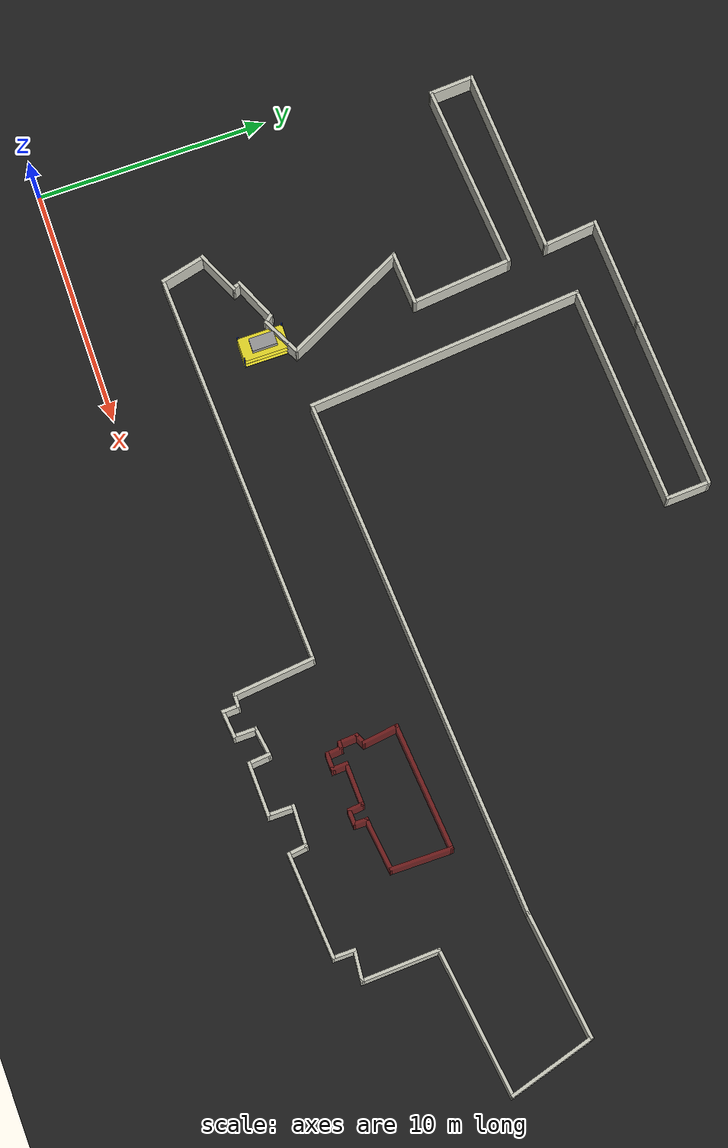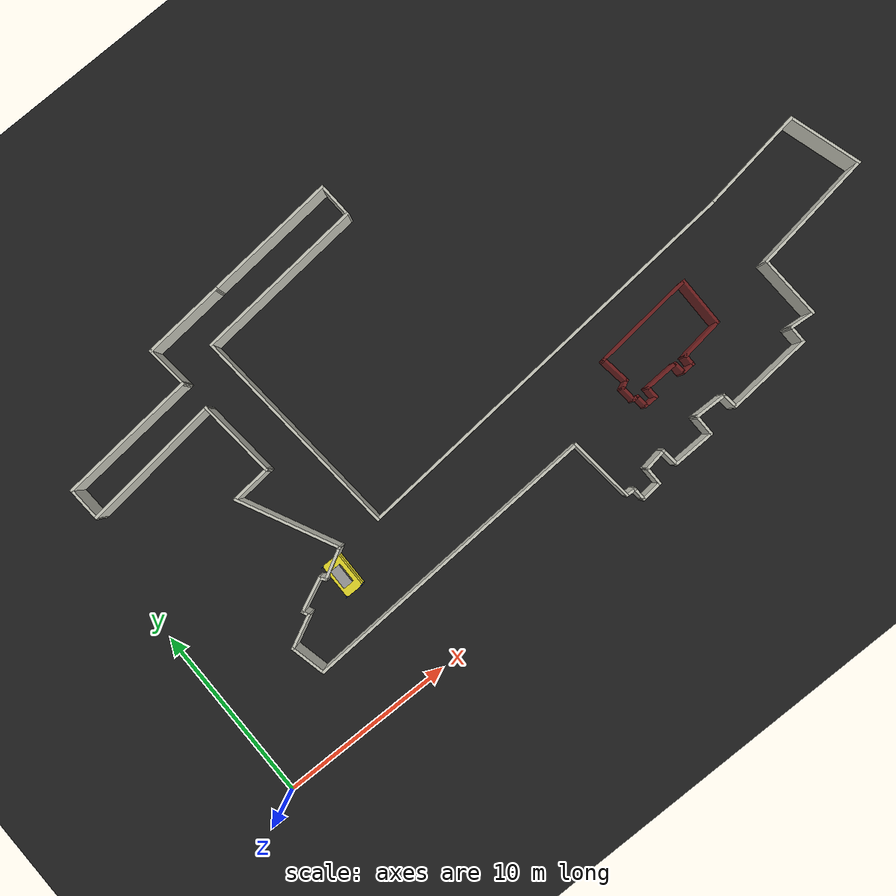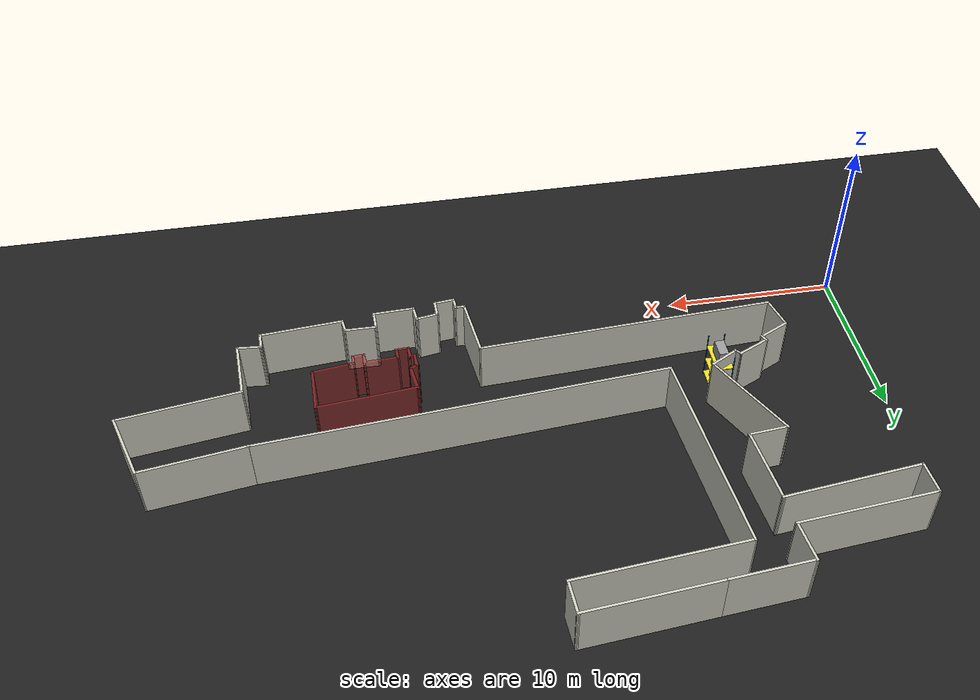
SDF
<sdf version="1.7">
    <world name="default">
        <light name="sun" type="directional">
            <cast_shadows>1</cast_shadows>
            <pose>0 0 10 0 -0 0</pose>
            <diffuse>0.8 0.8 0.8 1</diffuse>
            <specular>0.2 0.2 0.2 1</specular>
            <attenuation>
                <range>1000</range>
                <constant>0.9</constant>
                <linear>0.01</linear>
                <quadratic>0.001</quadratic>
            </attenuation>
            <direction>-0.5 0.1 -0.9</direction>
            <spot>
                <inner_angle>0</inner_angle>
                <outer_angle>0</outer_angle>
                <falloff>0</falloff>
            </spot>
        </light>
        <gravity>0 0 -9.8</gravity>
        <magnetic_field>6e-06 2.3e-05 -4.2e-05</magnetic_field>
        <atmosphere type="adiabatic" />
        <physics type="ode">
            <max_step_size>0.005</max_step_size>
            <real_time_factor>1</real_time_factor>
            <real_time_update_rate>1000</real_time_update_rate>
        </physics>
        <scene>
            <ambient>0.4 0.4 0.4 1</ambient>
            <background>0.7 0.7 0.7 1</background>
            <shadows>1</shadows>
        </scene>
        <wind />
        <spherical_coordinates>
            <surface_model>EARTH_WGS84</surface_model>
            <latitude_deg>0</latitude_deg>
            <longitude_deg>0</longitude_deg>
            <elevation>0</elevation>
            <heading_deg>0</heading_deg>
        </spherical_coordinates>
        <model name="walls-generator">
            <pose>0 0 0 0 -0 0</pose>
            <link name="Wall_11">
                <collision name="Wall_11_Collision">
                    <geometry>
                        <box>
                            <size>2.080802941783547 0.15 3.5</size>
                            <scale>1 1 1</scale>
                        </box>
                    </geometry>
                    <pose>0 0 1.25 0 -0 0</pose>
                </collision>
                <visual name="Wall_11_Visual">
                    <pose>0 0 1.25 0 -0 0</pose>
                    <geometry>
                        <box>
                            <size>2.080802941783547 0.15 3.5</size>
                        </box>
                        <scale>1 1 1</scale>
                    </geometry>
                    <material>
                        <script>
                            <uri>file://media/materials/scripts/gazebo.material</uri>
                            <name>Gazebo/PaintedWall</name>
                        </script>
                        <ambient>1 1 1 1</ambient>
                    </material>
                    <meta>
                        <layer>0</layer>
                    </meta>
                </visual>
                <pose>5.21 4.76 0 0 0 1.8007007549268013</pose>
            </link>
            <link name="Wall_12">
                <collision name="Wall_12_Collision">
                    <geometry>
                        <box>
                            <size>2.001485889765299 0.15 3.5</size>
                            <scale>1 1 1</scale>
                        </box>
                    </geometry>
                    <pose>0 0 1.25 0 -0 0</pose>
                </collision>
                <visual name="Wall_12_Visual">
                    <pose>0 0 1.25 0 -0 0</pose>
                    <geometry>
                        <box>
                            <size>2.001485889765299 0.15 3.5</size>
                        </box>
                        <scale>1 1 1</scale>
                    </geometry>
                    <material>
                        <script>
                            <uri>file://media/materials/scripts/gazebo.material</uri>
                            <name>Gazebo/PaintedWall</name>
                        </script>
                        <ambient>1 1 1 1</ambient>
                    </material>
                    <meta>
                        <layer>0</layer>
                    </meta>
                </visual>
                <pose>5.82 6.11 0 0 0 0.45881672870682993</pose>
            </link>
            <link name="Wall_13">
                <collision name="Wall_13_Collision">
                    <geometry>
                        <box>
                            <size>0.4861547262794318 0.15 3.5</size>
                            <scale>1 1 1</scale>
                        </box>
                    </geometry>
                    <pose>0 0 1.25 0 -0 0</pose>
                </collision>
                <visual name="Wall_13_Visual">
                    <pose>0 0 1.25 0 -0 0</pose>
                    <geometry>
                        <box>
                            <size>0.4861547262794318 0.15 3.5</size>
                        </box>
                        <scale>1 1 1</scale>
                    </geometry>
                    <material>
                        <script>
                            <uri>file://media/materials/scripts/gazebo.material</uri>
                            <name>Gazebo/PaintedWall</name>
                        </script>
                        <ambient>1 1 1 1</ambient>
                    </material>
                    <meta>
                        <layer>0</layer>
                    </meta>
                </visual>
                <pose>6.585000000000001 6.675000000000001 0 0 0 1.9678757720198792</pose>
            </link>
            <link name="Wall_14">
                <collision name="Wall_14_Collision">
                    <geometry>
                        <box>
                            <size>2.037882411592417 0.15 3.5</size>
                            <scale>1 1 1</scale>
                        </box>
                    </geometry>
                    <pose>0 0 1.25 0 -0 0</pose>
                </collision>
                <visual name="Wall_14_Visual">
                    <pose>0 0 1.25 0 -0 0</pose>
                    <geometry>
                        <box>
                            <size>2.037882411592417 0.15 3.5</size>
                        </box>
                        <scale>1 1 1</scale>
                    </geometry>
                    <material>
                        <script>
                            <uri>file://media/materials/scripts/gazebo.material</uri>
                            <name>Gazebo/PaintedWall</name>
                        </script>
                        <ambient>1 1 1 1</ambient>
                    </material>
                    <meta>
                        <layer>0</layer>
                    </meta>
                </visual>
                <pose>7.375 7.23 0 0 0 0.4375871595186294</pose>
            </link>
            <link name="Wall_15">
                <collision name="Wall_15_Collision">
                    <geometry>
                        <box>
                            <size>0.4982814953453589 0.15 3.5</size>
                            <scale>1 1 1</scale>
                        </box>
                    </geometry>
                    <pose>0 0 1.25 0 -0 0</pose>
                </collision>
                <visual name="Wall_15_Visual">
                    <pose>0 0 1.25 0 -0 0</pose>
                    <geometry>
                        <box>
                            <size>0.4982814953453589 0.15 3.5</size>
                        </box>
                        <scale>1 1 1</scale>
                    </geometry>
                    <material>
                        <script>
                            <uri>file://media/materials/scripts/gazebo.material</uri>
                            <name>Gazebo/PaintedWall</name>
                        </script>
                        <ambient>1 1 1 1</ambient>
                    </material>
                    <meta>
                        <layer>0</layer>
                    </meta>
                </visual>
                <pose>8.34 7.495 0 0 0 -0.8870870151605271</pose>
            </link>
            <link name="Wall_16">
                <collision name="Wall_16_Collision">
                    <geometry>
                        <box>
                            <size>1.890632069105933 0.15 3.5</size>
                            <scale>1 1 1</scale>
                        </box>
                    </geometry>
                    <pose>0 0 1.25 0 -0 0</pose>
                </collision>
                <visual name="Wall_16_Visual">
                    <pose>0 0 1.25 0 -0 0</pose>
                    <geometry>
                        <box>
                            <size>1.890632069105933 0.15 3.5</size>
                        </box>
                        <scale>1 1 1</scale>
                    </geometry>
                    <material>
                        <script>
                            <uri>file://media/materials/scripts/gazebo.material</uri>
                            <name>Gazebo/PaintedWall</name>
                        </script>
                        <ambient>1 1 1 1</ambient>
                    </material>
                    <meta>
                        <layer>0</layer>
                    </meta>
                </visual>
                <pose>9.215 7.775 0 0 0 0.497054199332323</pose>
            </link>
            <link name="Wall_17">
                <collision name="Wall_17_Collision">
                    <geometry>
                        <box>
                            <size>5.901182487106457 0.15 3.5</size>
                            <scale>1 1 1</scale>
                        </box>
                    </geometry>
                    <pose>0 0 1.25 0 -0 0</pose>
                </collision>
                <visual name="Wall_17_Visual">
                    <pose>0 0 1.25 0 -0 0</pose>
                    <geometry>
                        <box>
                            <size>5.901182487106457 0.15 3.5</size>
                        </box>
                        <scale>1 1 1</scale>
                    </geometry>
                    <material>
                        <script>
                            <uri>file://media/materials/scripts/gazebo.material</uri>
                            <name>Gazebo/PaintedWall</name>
                        </script>
                        <ambient>1 1 1 1</ambient>
                    </material>
                    <meta>
                        <layer>0</layer>
                    </meta>
                </visual>
                <pose>8.7 10.765 0 0 0 2.03211112509742</pose>
            </link>
            <link name="Wall_18">
                <collision name="Wall_18_Collision">
                    <geometry>
                        <box>
                            <size>2.3183403791840433 0.15 3.5</size>
                            <scale>1 1 1</scale>
                        </box>
                    </geometry>
                    <pose>0 0 1.25 0 -0 0</pose>
                </collision>
                <visual name="Wall_18_Visual">
                    <pose>0 0 1.25 0 -0 0</pose>
                    <geometry>
                        <box>
                            <size>2.3183403791840433 0.15 3.5</size>
                        </box>
                        <scale>1 1 1</scale>
                    </geometry>
                    <material>
                        <script>
                            <uri>file://media/materials/scripts/gazebo.material</uri>
                            <name>Gazebo/PaintedWall</name>
                        </script>
                        <ambient>1 1 1 1</ambient>
                    </material>
                    <meta>
                        <layer>0</layer>
                    </meta>
                </visual>
                <pose>8.5 13.435 0 0 0 0.08773713978212376</pose>
            </link>
            <link name="Wall_19">
                <collision name="Wall_19_Collision">
                    <geometry>
                        <box>
                            <size>4.479457240809752 0.15 3.5</size>
                            <scale>1 1 1</scale>
                        </box>
                    </geometry>
                    <pose>0 0 1.25 0 -0 0</pose>
                </collision>
                <visual name="Wall_19_Visual">
                    <pose>0 0 1.25 0 -0 0</pose>
                    <geometry>
                        <box>
                            <size>4.479457240809752 0.15 3.5</size>
                        </box>
                        <scale>1 1 1</scale>
                    </geometry>
                    <material>
                        <script>
                            <uri>file://media/materials/scripts/gazebo.material</uri>
                            <name>Gazebo/PaintedWall</name>
                        </script>
                        <ambient>1 1 1 1</ambient>
                    </material>
                    <meta>
                        <layer>0</layer>
                    </meta>
                </visual>
                <pose>9.375 15.685 0 0 0 1.665638540090899</pose>
            </link>
            <link name="Wall_20">
                <collision name="Wall_20_Collision">
                    <geometry>
                        <box>
                            <size>7.926593084378275 0.15 3.5</size>
                            <scale>1 1 1</scale>
                        </box>
                    </geometry>
                    <pose>0 0 1.25 0 -0 0</pose>
                </collision>
                <visual name="Wall_20_Visual">
                    <pose>0 0 1.25 0 -0 0</pose>
                    <geometry>
                        <box>
                            <size>7.926593084378275 0.15 3.5</size>
                        </box>
                        <scale>1 1 1</scale>
                    </geometry>
                    <material>
                        <script>
                            <uri>file://media/materials/scripts/gazebo.material</uri>
                            <name>Gazebo/PaintedWall</name>
                        </script>
                        <ambient>1 1 1 1</ambient>
                    </material>
                    <meta>
                        <layer>0</layer>
                    </meta>
                </visual>
                <pose>5.305 17.415 0 0 0 -3.03207147282465</pose>
            </link>
            <link name="Wall_21">
                <collision name="Wall_21_Collision">
                    <geometry>
                        <box>
                            <size>1.9827302038216081 0.15 3.5</size>
                            <scale>1 1 1</scale>
                        </box>
                    </geometry>
                    <pose>0 0 1.25 0 -0 0</pose>
                </collision>
                <visual name="Wall_21_Visual">
                    <pose>0 0 1.25 0 -0 0</pose>
                    <geometry>
                        <box>
                            <size>1.9827302038216081 0.15 3.5</size>
                        </box>
                        <scale>1 1 1</scale>
                    </geometry>
                    <material>
                        <script>
                            <uri>file://media/materials/scripts/gazebo.material</uri>
                            <name>Gazebo/PaintedWall</name>
                        </script>
                        <ambient>1 1 1 1</ambient>
                    </material>
                    <meta>
                        <layer>0</layer>
                    </meta>
                </visual>
                <pose>1.3900000000000001 17.905 0 0 0 1.6253868419753732</pose>
            </link>
            <link name="Wall_22">
                <collision name="Wall_22_Collision">
                    <geometry>
                        <box>
                            <size>7.880853769151246 0.15 3.5</size>
                            <scale>1 1 1</scale>
                        </box>
                    </geometry>
                    <pose>0 0 1.25 0 -0 0</pose>
                </collision>
                <visual name="Wall_22_Visual">
                    <pose>0 0 1.25 0 -0 0</pose>
                    <geometry>
                        <box>
                            <size>7.880853769151246 0.15 3.5</size>
                        </box>
                        <scale>1 1 1</scale>
                    </geometry>
                    <material>
                        <script>
                            <uri>file://media/materials/scripts/gazebo.material</uri>
                            <name>Gazebo/PaintedWall</name>
                        </script>
                        <ambient>1 1 1 1</ambient>
                    </material>
                    <meta>
                        <layer>0</layer>
                    </meta>
                </visual>
                <pose>5.19 19.165 0 0 0 0.0893716808633222</pose>
            </link>
            <link name="Wall_23">
                <collision name="Wall_23_Collision">
                    <geometry>
                        <box>
                            <size>2.4326519664635686 0.15 3.5</size>
                            <scale>1 1 1</scale>
                        </box>
                    </geometry>
                    <pose>0 0 1.25 0 -0 0</pose>
                </collision>
                <visual name="Wall_23_Visual">
                    <pose>0 0 1.25 0 -0 0</pose>
                    <geometry>
                        <box>
                            <size>2.4326519664635686 0.15 3.5</size>
                        </box>
                        <scale>1 1 1</scale>
                    </geometry>
                    <material>
                        <script>
                            <uri>file://media/materials/scripts/gazebo.material</uri>
                            <name>Gazebo/PaintedWall</name>
                        </script>
                        <ambient>1 1 1 1</ambient>
                    </material>
                    <meta>
                        <layer>0</layer>
                    </meta>
                </visual>
                <pose>8.920000000000002 20.645000000000003 0 0 0 1.676131875903435</pose>
            </link>
            <link name="Wall_24">
                <collision name="Wall_24_Collision">
                    <geometry>
                        <box>
                            <size>4.675980556741268 0.15 3.5</size>
                            <scale>1 1 1</scale>
                        </box>
                    </geometry>
                    <pose>0 0 1.25 0 -0 0</pose>
                </collision>
                <visual name="Wall_24_Visual">
                    <pose>0 0 1.25 0 -0 0</pose>
                    <geometry>
                        <box>
                            <size>4.675980556741268 0.15 3.5</size>
                        </box>
                        <scale>1 1 1</scale>
                    </geometry>
                    <material>
                        <script>
                            <uri>file://media/materials/scripts/gazebo.material</uri>
                            <name>Gazebo/PaintedWall</name>
                        </script>
                        <ambient>1 1 1 1</ambient>
                    </material>
                    <meta>
                        <layer>0</layer>
                    </meta>
                </visual>
                <pose>11.055 21.97 0 0 0 0.08405866282370719</pose>
            </link>
            <link name="Wall_25">
                <collision name="Wall_25_Collision">
                    <geometry>
                        <box>
                            <size>7.546877719686868 0.15 3.5</size>
                            <scale>1 1 1</scale>
                        </box>
                    </geometry>
                    <pose>0 0 1.25 0 -0 0</pose>
                </collision>
                <visual name="Wall_25_Visual">
                    <pose>0 0 1.25 0 -0 0</pose>
                    <geometry>
                        <box>
                            <size>7.546877719686868 0.15 3.5</size>
                        </box>
                        <scale>1 1 1</scale>
                    </geometry>
                    <material>
                        <script>
                            <uri>file://media/materials/scripts/gazebo.material</uri>
                            <name>Gazebo/PaintedWall</name>
                        </script>
                        <ambient>1 1 1 1</ambient>
                    </material>
                    <meta>
                        <layer>0</layer>
                    </meta>
                </visual>
                <pose>16.995 22.475 0 0 0 0.08527438235225933</pose>
            </link>
            <link name="Wall_26">
                <collision name="Wall_26_Collision">
                    <geometry>
                        <box>
                            <size>1.9927153876819934 0.15 3.5</size>
                            <scale>1 1 1</scale>
                        </box>
                    </geometry>
                    <pose>0 0 1.25 0 -0 0</pose>
                </collision>
                <visual name="Wall_26_Visual">
                    <pose>0 0 1.25 0 -0 0</pose>
                    <geometry>
                        <box>
                            <size>1.9927153876819934 0.15 3.5</size>
                        </box>
                        <scale>1 1 1</scale>
                    </geometry>
                    <material>
                        <script>
                            <uri>file://media/materials/scripts/gazebo.material</uri>
                            <name>Gazebo/PaintedWall</name>
                        </script>
                        <ambient>1 1 1 1</ambient>
                    </material>
                    <meta>
                        <layer>0</layer>
                    </meta>
                </visual>
                <pose>20.73 21.869999999999997 0 0 0 -1.51650191488659</pose>
            </link>
            <link name="Wall_27">
                <collision name="Wall_27_Collision">
                    <geometry>
                        <box>
                            <size>9.616456570438594 0.15 3.5</size>
                            <scale>1 1 1</scale>
                        </box>
                    </geometry>
                    <pose>0 0 1.25 0 -0 0</pose>
                </collision>
                <visual name="Wall_27_Visual">
                    <pose>0 0 1.25 0 -0 0</pose>
                    <geometry>
                        <box>
                            <size>9.616456570438594 0.15 3.5</size>
                        </box>
                        <scale>1 1 1</scale>
                    </geometry>
                    <material>
                        <script>
                            <uri>file://media/materials/scripts/gazebo.material</uri>
                            <name>Gazebo/PaintedWall</name>
                        </script>
                        <ambient>1 1 1 1</ambient>
                    </material>
                    <meta>
                        <layer>0</layer>
                    </meta>
                </visual>
                <pose>16.065 20.535 0 0 0 -3.053801924545061</pose>
            </link>
            <link name="Wall_28">
                <collision name="Wall_28_Collision">
                    <geometry>
                        <box>
                            <size>12.243093070013147 0.15 3.5</size>
                            <scale>1 1 1</scale>
                        </box>
                    </geometry>
                    <pose>0 0 1.25 0 -0 0</pose>
                </collision>
                <visual name="Wall_28_Visual">
                    <pose>0 0 1.25 0 -0 0</pose>
                    <geometry>
                        <box>
                            <size>12.243093070013147 0.15 3.5</size>
                        </box>
                        <scale>1 1 1</scale>
                    </geometry>
                    <material>
                        <script>
                            <uri>file://media/materials/scripts/gazebo.material</uri>
                            <name>Gazebo/PaintedWall</name>
                        </script>
                        <ambient>1 1 1 1</ambient>
                    </material>
                    <meta>
                        <layer>0</layer>
                    </meta>
                </visual>
                <pose>11.86 14.095 0 0 0 -1.486350329818002</pose>
            </link>
            <link name="Wall_29">
                <collision name="Wall_29_Collision">
                    <geometry>
                        <box>
                            <size>23.231865175934118 0.15 3.5</size>
                            <scale>1 1 1</scale>
                        </box>
                    </geometry>
                    <pose>0 0 1.25 0 -0 0</pose>
                </collision>
                <visual name="Wall_29_Visual">
                    <pose>0 0 1.25 0 -0 0</pose>
                    <geometry>
                        <box>
                            <size>23.231865175934118 0.15 3.5</size>
                        </box>
                        <scale>1 1 1</scale>
                    </geometry>
                    <material>
                        <script>
                            <uri>file://media/materials/scripts/gazebo.material</uri>
                            <name>Gazebo/PaintedWall</name>
                        </script>
                        <ambient>1 1 1 1</ambient>
                    </material>
                    <meta>
                        <layer>0</layer>
                    </meta>
                </visual>
                <pose>23.875 8.98 0 0 0 0.07893171512518443</pose>
            </link>
            <link name="Wall_30">
                <collision name="Wall_30_Collision">
                    <geometry>
                        <box>
                            <size>5.961032610474665 0.15 3.5</size>
                            <scale>1 1 1</scale>
                        </box>
                    </geometry>
                    <pose>0 0 1.25 0 -0 0</pose>
                </collision>
                <visual name="Wall_30_Visual">
                    <pose>0 0 1.25 0 -0 0</pose>
                    <geometry>
                        <box>
                            <size>5.961032610474665 0.15 3.5</size>
                        </box>
                        <scale>1 1 1</scale>
                    </geometry>
                    <material>
                        <script>
                            <uri>file://media/materials/scripts/gazebo.material</uri>
                            <name>Gazebo/PaintedWall</name>
                        </script>
                        <ambient>1 1 1 1</ambient>
                    </material>
                    <meta>
                        <layer>0</layer>
                    </meta>
                </visual>
                <pose>38.255 10.31 0 0 0 0.14506083085764576</pose>
            </link>
            <link name="Wall_31">
                <collision name="Wall_31_Collision">
                    <geometry>
                        <box>
                            <size>4.207351352791622 0.15 3.5</size>
                            <scale>1 1 1</scale>
                        </box>
                    </geometry>
                    <pose>0 0 1.25 0 -0 0</pose>
                </collision>
                <visual name="Wall_31_Visual">
                    <pose>0 0 1.25 0 -0 0</pose>
                    <geometry>
                        <box>
                            <size>4.207351352791622 0.15 3.5</size>
                        </box>
                        <scale>1 1 1</scale>
                    </geometry>
                    <material>
                        <script>
                            <uri>file://media/materials/scripts/gazebo.material</uri>
                            <name>Gazebo/PaintedWall</name>
                        </script>
                        <ambient>1 1 1 1</ambient>
                    </material>
                    <meta>
                        <layer>0</layer>
                    </meta>
                </visual>
                <pose>41.755 8.8 0 0 0 -1.2576192178262633</pose>
            </link>
            <link name="Wall_32">
                <collision name="Wall_32_Collision">
                    <geometry>
                        <box>
                            <size>6.941082387955546 0.15 3.5</size>
                            <scale>1 1 1</scale>
                        </box>
                    </geometry>
                    <pose>0 0 1.25 0 -0 0</pose>
                </collision>
                <visual name="Wall_32_Visual">
                    <pose>0 0 1.25 0 -0 0</pose>
                    <geometry>
                        <box>
                            <size>6.941082387955546 0.15 3.5</size>
                        </box>
                        <scale>1 1 1</scale>
                    </geometry>
                    <material>
                        <script>
                            <uri>file://media/materials/scripts/gazebo.material</uri>
                            <name>Gazebo/PaintedWall</name>
                        </script>
                        <ambient>1 1 1 1</ambient>
                    </material>
                    <meta>
                        <layer>0</layer>
                    </meta>
                </visual>
                <pose>39.02 6.38 0 0 0 -2.996780155350854</pose>
            </link>
            <link name="Wall_33">
                <collision name="Wall_33_Collision">
                    <geometry>
                        <box>
                            <size>3.605792239125494 0.15 3.5</size>
                            <scale>1 1 1</scale>
                        </box>
                    </geometry>
                    <pose>0 0 1.25 0 -0 0</pose>
                </collision>
                <visual name="Wall_33_Visual">
                    <pose>0 0 1.25 0 -0 0</pose>
                    <geometry>
                        <box>
                            <size>3.605792239125494 0.15 3.5</size>
                        </box>
                        <scale>1 1 1</scale>
                    </geometry>
                    <material>
                        <script>
                            <uri>file://media/materials/scripts/gazebo.material</uri>
                            <name>Gazebo/PaintedWall</name>
                        </script>
                        <ambient>1 1 1 1</ambient>
                    </material>
                    <meta>
                        <layer>0</layer>
                    </meta>
                </visual>
                <pose>35.760000000000005 4.165 0 0 0 -1.5128901215467905</pose>
            </link>
            <link name="Wall_34">
                <collision name="Wall_34_Collision">
                    <geometry>
                        <box>
                            <size>1.4646102083887782 0.15 3.5</size>
                            <scale>1 1 1</scale>
                        </box>
                    </geometry>
                    <pose>0 0 1.25 0 -0 0</pose>
                </collision>
                <visual name="Wall_34_Visual">
                    <pose>0 0 1.25 0 -0 0</pose>
                    <geometry>
                        <box>
                            <size>1.4646102083887782 0.15 3.5</size>
                        </box>
                        <scale>1 1 1</scale>
                    </geometry>
                    <material>
                        <script>
                            <uri>file://media/materials/scripts/gazebo.material</uri>
                            <name>Gazebo/PaintedWall</name>
                        </script>
                        <ambient>1 1 1 1</ambient>
                    </material>
                    <meta>
                        <layer>0</layer>
                    </meta>
                </visual>
                <pose>35.205 2.495 0 0 0 3.0578197098460262</pose>
            </link>
            <link name="Wall_35">
                <collision name="Wall_35_Collision">
                    <geometry>
                        <box>
                            <size>1.0902127418834526 0.15 3.5</size>
                            <scale>1 1 1</scale>
                        </box>
                    </geometry>
                    <pose>0 0 1.25 0 -0 0</pose>
                </collision>
                <visual name="Wall_35_Visual">
                    <pose>0 0 1.25 0 -0 0</pose>
                    <geometry>
                        <box>
                            <size>1.0902127418834526 0.15 3.5</size>
                        </box>
                        <scale>1 1 1</scale>
                    </geometry>
                    <material>
                        <script>
                            <uri>file://media/materials/scripts/gazebo.material</uri>
                            <name>Gazebo/PaintedWall</name>
                        </script>
                        <ambient>1 1 1 1</ambient>
                    </material>
                    <meta>
                        <layer>0</layer>
                    </meta>
                </visual>
                <pose>34.56 2.08 0 0 0 -1.5495229407708397</pose>
            </link>
            <link name="Wall_36">
                <collision name="Wall_36_Collision">
                    <geometry>
                        <box>
                            <size>4.8362565017292845 0.15 3.5</size>
                            <scale>1 1 1</scale>
                        </box>
                    </geometry>
                    <pose>0 0 1.25 0 -0 0</pose>
                </collision>
                <visual name="Wall_36_Visual">
                    <pose>0 0 1.25 0 -0 0</pose>
                    <geometry>
                        <box>
                            <size>4.8362565017292845 0.15 3.5</size>
                        </box>
                        <scale>1 1 1</scale>
                    </geometry>
                    <material>
                        <script>
                            <uri>file://media/materials/scripts/gazebo.material</uri>
                            <name>Gazebo/PaintedWall</name>
                        </script>
                        <ambient>1 1 1 1</ambient>
                    </material>
                    <meta>
                        <layer>0</layer>
                    </meta>
                </visual>
                <pose>32.235 1.415 0 0 0 -3.0582742109996803</pose>
            </link>
            <link name="Wall_37">
                <collision name="Wall_37_Collision">
                    <geometry>
                        <box>
                            <size>0.9476214641043714 0.15 3.5</size>
                            <scale>1 1 1</scale>
                        </box>
                    </geometry>
                    <pose>0 0 1.25 0 -0 0</pose>
                </collision>
                <visual name="Wall_37_Visual">
                    <pose>0 0 1.25 0 -0 0</pose>
                    <geometry>
                        <box>
                            <size>0.9476214641043714 0.15 3.5</size>
                        </box>
                        <scale>1 1 1</scale>
                    </geometry>
                    <material>
                        <script>
                            <uri>file://media/materials/scripts/gazebo.material</uri>
                            <name>Gazebo/PaintedWall</name>
                        </script>
                        <ambient>1 1 1 1</ambient>
                    </material>
                    <meta>
                        <layer>0</layer>
                    </meta>
                </visual>
                <pose>29.845 1.6150000000000002 0 0 0 1.7091472969720256</pose>
            </link>
            <link name="Wall_38">
                <collision name="Wall_38_Collision">
                    <geometry>
                        <box>
                            <size>1.8801156030739647 0.15 3.5</size>
                            <scale>1 1 1</scale>
                        </box>
                    </geometry>
                    <pose>0 0 1.25 0 -0 0</pose>
                </collision>
                <visual name="Wall_38_Visual">
                    <pose>0 0 1.25 0 -0 0</pose>
                    <geometry>
                        <box>
                            <size>1.8801156030739647 0.15 3.5</size>
                        </box>
                        <scale>1 1 1</scale>
                    </geometry>
                    <material>
                        <script>
                            <uri>file://media/materials/scripts/gazebo.material</uri>
                            <name>Gazebo/PaintedWall</name>
                        </script>
                        <ambient>1 1 1 1</ambient>
                    </material>
                    <meta>
                        <layer>0</layer>
                    </meta>
                </visual>
                <pose>28.925 2.0200000000000005 0 0 0 3.1300324749343833</pose>
            </link>
            <link name="Wall_39">
                <collision name="Wall_39_Collision">
                    <geometry>
                        <box>
                            <size>1.2601801655587261 0.15 3.5</size>
                            <scale>1 1 1</scale>
                        </box>
                    </geometry>
                    <pose>0 0 1.25 0 -0 0</pose>
                </collision>
                <visual name="Wall_39_Visual">
                    <pose>0 0 1.25 0 -0 0</pose>
                    <geometry>
                        <box>
                            <size>1.2601801655587261 0.15 3.5</size>
                        </box>
                        <scale>1 1 1</scale>
                    </geometry>
                    <material>
                        <script>
                            <uri>file://media/materials/scripts/gazebo.material</uri>
                            <name>Gazebo/PaintedWall</name>
                        </script>
                        <ambient>1 1 1 1</ambient>
                    </material>
                    <meta>
                        <layer>0</layer>
                    </meta>
                </visual>
                <pose>28.07 1.475 0 0 0 -1.5527802582408416</pose>
            </link>
            <link name="Wall_40">
                <collision name="Wall_40_Collision">
                    <geometry>
                        <box>
                            <size>2.4513908837918 0.15 3.5</size>
                            <scale>1 1 1</scale>
                        </box>
                    </geometry>
                    <pose>0 0 1.25 0 -0 0</pose>
                </collision>
                <visual name="Wall_40_Visual">
                    <pose>0 0 1.25 0 -0 0</pose>
                    <geometry>
                        <box>
                            <size>2.4513908837918 0.15 3.5</size>
                        </box>
                        <scale>1 1 1</scale>
                    </geometry>
                    <material>
                        <script>
                            <uri>file://media/materials/scripts/gazebo.material</uri>
                            <name>Gazebo/PaintedWall</name>
                        </script>
                        <ambient>1 1 1 1</ambient>
                    </material>
                    <meta>
                        <layer>0</layer>
                    </meta>
                </visual>
                <pose>26.93 0.88 0 0 0 -3.106824061733711</pose>
            </link>
            <link name="Wall_41">
                <collision name="Wall_41_Collision">
                    <geometry>
                        <box>
                            <size>1.0743916918709298 0.15 3.5</size>
                            <scale>1 1 1</scale>
                        </box>
                    </geometry>
                    <pose>0 0 1.25 0 -0 0</pose>
                </collision>
                <visual name="Wall_41_Visual">
                    <pose>0 0 1.25 0 -0 0</pose>
                    <geometry>
                        <box>
                            <size>1.0743916918709298 0.15 3.5</size>
                        </box>
                        <scale>1 1 1</scale>
                    </geometry>
                    <material>
                        <script>
                            <uri>file://media/materials/scripts/gazebo.material</uri>
                            <name>Gazebo/PaintedWall</name>
                        </script>
                        <ambient>1 1 1 1</ambient>
                    </material>
                    <meta>
                        <layer>0</layer>
                    </meta>
                </visual>
                <pose>25.735 1.3 0 0 0 1.6683121300824426</pose>
            </link>
            <link name="Wall_42">
                <collision name="Wall_42_Collision">
                    <geometry>
                        <box>
                            <size>1.3665525060596433 0.15 3.5</size>
                            <scale>1 1 1</scale>
                        </box>
                    </geometry>
                    <pose>0 0 1.25 0 -0 0</pose>
                </collision>
                <visual name="Wall_42_Visual">
                    <pose>0 0 1.25 0 -0 0</pose>
                    <geometry>
                        <box>
                            <size>1.3665525060596433 0.15 3.5</size>
                        </box>
                        <scale>1 1 1</scale>
                    </geometry>
                    <material>
                        <script>
                            <uri>file://media/materials/scripts/gazebo.material</uri>
                            <name>Gazebo/PaintedWall</name>
                        </script>
                        <ambient>1 1 1 1</ambient>
                    </material>
                    <meta>
                        <layer>0</layer>
                    </meta>
                </visual>
                <pose>25.090000000000003 1.6600000000000001 0 0 0 -2.976443976175166</pose>
            </link>
            <link name="Wall_43">
                <collision name="Wall_43_Collision">
                    <geometry>
                        <box>
                            <size>1.1002105029939417 0.15 3.5</size>
                            <scale>1 1 1</scale>
                        </box>
                    </geometry>
                    <pose>0 0 1.25 0 -0 0</pose>
                </collision>
                <visual name="Wall_43_Visual">
                    <pose>0 0 1.25 0 -0 0</pose>
                    <geometry>
                        <box>
                            <size>1.1002105029939417 0.15 3.5</size>
                        </box>
                        <scale>1 1 1</scale>
                    </geometry>
                    <material>
                        <script>
                            <uri>file://media/materials/scripts/gazebo.material</uri>
                            <name>Gazebo/PaintedWall</name>
                        </script>
                        <ambient>1 1 1 1</ambient>
                    </material>
                    <meta>
                        <layer>0</layer>
                    </meta>
                </visual>
                <pose>24.5 1.085 0 0 0 -1.5497468046578506</pose>
            </link>
            <link name="Wall_44">
                <collision name="Wall_44_Collision">
                    <geometry>
                        <box>
                            <size>1.2764102272262987 0.15 3.5</size>
                            <scale>1 1 1</scale>
                        </box>
                    </geometry>
                    <pose>0 0 1.25 0 -0 0</pose>
                </collision>
                <visual name="Wall_44_Visual">
                    <pose>0 0 1.25 0 -0 0</pose>
                    <geometry>
                        <box>
                            <size>1.2764102272262987 0.15 3.5</size>
                        </box>
                        <scale>1 1 1</scale>
                    </geometry>
                    <material>
                        <script>
                            <uri>file://media/materials/scripts/gazebo.material</uri>
                            <name>Gazebo/PaintedWall</name>
                        </script>
                        <ambient>1 1 1 1</ambient>
                    </material>
                    <meta>
                        <layer>0</layer>
                    </meta>
                </visual>
                <pose>23.950000000000003 0.55 0 0 0 -3.0348569809406576</pose>
            </link>
            <link name="Wall_45">
                <collision name="Wall_45_Collision">
                    <geometry>
                        <box>
                            <size>0.8206713054842887 0.15 3.5</size>
                            <scale>1 1 1</scale>
                        </box>
                    </geometry>
                    <pose>0 0 1.25 0 -0 0</pose>
                </collision>
                <visual name="Wall_45_Visual">
                    <pose>0 0 1.25 0 -0 0</pose>
                    <geometry>
                        <box>
                            <size>0.8206713054842887 0.15 3.5</size>
                        </box>
                        <scale>1 1 1</scale>
                    </geometry>
                    <material>
                        <script>
                            <uri>file://media/materials/scripts/gazebo.material</uri>
                            <name>Gazebo/PaintedWall</name>
                        </script>
                        <ambient>1 1 1 1</ambient>
                    </material>
                    <meta>
                        <layer>0</layer>
                    </meta>
                </visual>
                <pose>23.375 0.825 0 0 0 1.615542558249514</pose>
            </link>
            <link name="Wall_46">
                <collision name="Wall_46_Collision">
                    <geometry>
                        <box>
                            <size>0.6500999900019995 0.15 3.5</size>
                            <scale>1 1 1</scale>
                        </box>
                    </geometry>
                    <pose>0 0 1.25 0 -0 0</pose>
                </collision>
                <visual name="Wall_46_Visual">
                    <pose>0 0 1.25 0 -0 0</pose>
                    <geometry>
                        <box>
                            <size>0.6500999900019995 0.15 3.5</size>
                        </box>
                        <scale>1 1 1</scale>
                    </geometry>
                    <material>
                        <script>
                            <uri>file://media/materials/scripts/gazebo.material</uri>
                            <name>Gazebo/PaintedWall</name>
                        </script>
                        <ambient>1 1 1 1</ambient>
                    </material>
                    <meta>
                        <layer>0</layer>
                    </meta>
                </visual>
                <pose>23.11 1.165 0 0 0 3.1215953196166426</pose>
            </link>
            <link name="Wall_47">
                <collision name="Wall_47_Collision">
                    <geometry>
                        <box>
                            <size>3.7522770576400695 0.15 3.5</size>
                            <scale>1 1 1</scale>
                        </box>
                    </geometry>
                    <pose>0 0 1.25 0 -0 0</pose>
                </collision>
                <visual name="Wall_47_Visual">
                    <pose>0 0 1.25 0 -0 0</pose>
                    <geometry>
                        <box>
                            <size>3.7522770576400695 0.15 3.5</size>
                        </box>
                        <scale>1 1 1</scale>
                    </geometry>
                    <material>
                        <script>
                            <uri>file://media/materials/scripts/gazebo.material</uri>
                            <name>Gazebo/PaintedWall</name>
                        </script>
                        <ambient>1 1 1 1</ambient>
                    </material>
                    <meta>
                        <layer>0</layer>
                    </meta>
                </visual>
                <pose>22.66 2.96 0 0 0 1.6820666686767591</pose>
            </link>
            <link name="Wall_48">
                <collision name="Wall_48_Collision">
                    <geometry>
                        <box>
                            <size>17.205374519487982 0.15 3.5</size>
                            <scale>1 1 1</scale>
                        </box>
                    </geometry>
                    <pose>0 0 1.25 0 -0 0</pose>
                </collision>
                <visual name="Wall_48_Visual">
                    <pose>0 0 1.25 0 -0 0</pose>
                    <geometry>
                        <box>
                            <size>17.205374519487982 0.15 3.5</size>
                        </box>
                        <scale>1 1 1</scale>
                    </geometry>
                    <material>
                        <script>
                            <uri>file://media/materials/scripts/gazebo.material</uri>
                            <name>Gazebo/PaintedWall</name>
                        </script>
                        <ambient>1 1 1 1</ambient>
                    </material>
                    <meta>
                        <layer>0</layer>
                    </meta>
                </visual>
                <pose>13.945 4.285 0 0 0 -3.087037329512991</pose>
            </link>
            <static>1</static>
        </model>
        <model name="areas-generator">
            <pose>0 0 0 0 -0 0</pose>
            <link name="Area_11">
                <collision name="Area_11_Collision">
                    <geometry>
                        <box>
                            <size>2.8201685340067955 0.15 3.5</size>
                            <scale>1 1 1</scale>
                        </box>
                    </geometry>
                    <pose>0 0 1.25 0 -0 0</pose>
                </collision>
                <visual name="Area_11_Visual">
                    <pose>0 0 1.25 0 -0 0</pose>
                    <geometry>
                        <box>
                            <size>2.8201685340067955 0.15 3.5</size>
                        </box>
                        <scale>1 1 1</scale>
                    </geometry>
                    <material>
                        <script>
                            <uri>file://media/materials/scripts/gazebo.material</uri>
                            <name>Gazebo/RedTransparent</name>
                        </script>
                        <ambient>1 1 1 1</ambient>
                    </material>
                    <meta>
                        <layer>0</layer>
                    </meta>
                </visual>
                <pose>31.825000000000003 6.3950000000000005 0 0 0 -1.5595608445369349</pose>
            </link>
            <link name="Area_12">
                <collision name="Area_12_Collision">
                    <geometry>
                        <box>
                            <size>2.4608872754853266 0.15 3.5</size>
                            <scale>1 1 1</scale>
                        </box>
                    </geometry>
                    <pose>0 0 1.25 0 -0 0</pose>
                </collision>
                <visual name="Area_12_Visual">
                    <pose>0 0 1.25 0 -0 0</pose>
                    <geometry>
                        <box>
                            <size>2.4608872754853266 0.15 3.5</size>
                        </box>
                        <scale>1 1 1</scale>
                    </geometry>
                    <material>
                        <script>
                            <uri>file://media/materials/scripts/gazebo.material</uri>
                            <name>Gazebo/RedTransparent</name>
                        </script>
                        <ambient>1 1 1 1</ambient>
                    </material>
                    <meta>
                        <layer>0</layer>
                    </meta>
                </visual>
                <pose>30.695 4.905 0 0 0 -3.0070394082102854</pose>
            </link>
            <link name="Area_13">
                <collision name="Area_13_Collision">
                    <geometry>
                        <box>
                            <size>0.6800000000000003 0.15 3.5</size>
                            <scale>1 1 1</scale>
                        </box>
                    </geometry>
                    <pose>0 0 1.25 0 -0 0</pose>
                </collision>
                <visual name="Area_13_Visual">
                    <pose>0 0 1.25 0 -0 0</pose>
                    <geometry>
                        <box>
                            <size>0.6800000000000003 0.15 3.5</size>
                        </box>
                        <scale>1 1 1</scale>
                    </geometry>
                    <material>
                        <script>
                            <uri>file://media/materials/scripts/gazebo.material</uri>
                            <name>Gazebo/RedTransparent</name>
                        </script>
                        <ambient>1 1 1 1</ambient>
                    </material>
                    <meta>
                        <layer>0</layer>
                    </meta>
                </visual>
                <pose>29.55 4.484999999999999 0 0 0 -1.5707963267948966</pose>
            </link>
            <link name="Area_14">
                <collision name="Area_14_Collision">
                    <geometry>
                        <box>
                            <size>0.7513318551349177 0.15 3.5</size>
                            <scale>1 1 1</scale>
                        </box>
                    </geometry>
                    <pose>0 0 1.25 0 -0 0</pose>
                </collision>
                <visual name="Area_14_Visual">
                    <pose>0 0 1.25 0 -0 0</pose>
                    <geometry>
                        <box>
                            <size>0.7513318551349177 0.15 3.5</size>
                        </box>
                        <scale>1 1 1</scale>
                    </geometry>
                    <material>
                        <script>
                            <uri>file://media/materials/scripts/gazebo.material</uri>
                            <name>Gazebo/RedTransparent</name>
                        </script>
                        <ambient>1 1 1 1</ambient>
                    </material>
                    <meta>
                        <layer>0</layer>
                    </meta>
                </visual>
                <pose>29.25 4.199999999999999 0 0 0 -3.0750244898139694</pose>
            </link>
            <link name="Area_15">
                <collision name="Area_15_Collision">
                    <geometry>
                        <box>
                            <size>0.7529925372672538 0.15 3.5</size>
                            <scale>1 1 1</scale>
                        </box>
                    </geometry>
                    <pose>0 0 1.25 0 -0 0</pose>
                </collision>
                <visual name="Area_15_Visual">
                    <pose>0 0 1.25 0 -0 0</pose>
                    <geometry>
                        <box>
                            <size>0.7529925372672538 0.15 3.5</size>
                        </box>
                        <scale>1 1 1</scale>
                    </geometry>
                    <material>
                        <script>
                            <uri>file://media/materials/scripts/gazebo.material</uri>
                            <name>Gazebo/RedTransparent</name>
                        </script>
                        <ambient>1 1 1 1</ambient>
                    </material>
                    <meta>
                        <layer>0</layer>
                    </meta>
                </visual>
                <pose>28.92 4.48 0 0 0 1.6704649792860566</pose>
            </link>
            <link name="Area_16">
                <collision name="Area_16_Collision">
                    <geometry>
                        <box>
                            <size>1.9722239159883728 0.15 3.5</size>
                            <scale>1 1 1</scale>
                        </box>
                    </geometry>
                    <pose>0 0 1.25 0 -0 0</pose>
                </collision>
                <visual name="Area_16_Visual">
                    <pose>0 0 1.25 0 -0 0</pose>
                    <geometry>
                        <box>
                            <size>1.9722239159883728 0.15 3.5</size>
                        </box>
                        <scale>1 1 1</scale>
                    </geometry>
                    <material>
                        <script>
                            <uri>file://media/materials/scripts/gazebo.material</uri>
                            <name>Gazebo/RedTransparent</name>
                        </script>
                        <ambient>1 1 1 1</ambient>
                    </material>
                    <meta>
                        <layer>0</layer>
                    </meta>
                </visual>
                <pose>27.98 4.735 0 0 0 -3.0921823531815607</pose>
            </link>
            <link name="Area_17">
                <collision name="Area_17_Collision">
                    <geometry>
                        <box>
                            <size>0.7607372593840992 0.15 3.5</size>
                            <scale>1 1 1</scale>
                        </box>
                    </geometry>
                    <pose>0 0 1.25 0 -0 0</pose>
                </collision>
                <visual name="Area_17_Visual">
                    <pose>0 0 1.25 0 -0 0</pose>
                    <geometry>
                        <box>
                            <size>0.7607372593840992 0.15 3.5</size>
                        </box>
                        <scale>1 1 1</scale>
                    </geometry>
                    <material>
                        <script>
                            <uri>file://media/materials/scripts/gazebo.material</uri>
                            <name>Gazebo/RedTransparent</name>
                        </script>
                        <ambient>1 1 1 1</ambient>
                    </material>
                    <meta>
                        <layer>0</layer>
                    </meta>
                </visual>
                <pose>27.085 4.385 0 0 0 -1.5216555923788746</pose>
            </link>
            <link name="Area_18">
                <collision name="Area_18_Collision">
                    <geometry>
                        <box>
                            <size>0.8103029607687673 0.15 3.5</size>
                            <scale>1 1 1</scale>
                        </box>
                    </geometry>
                    <pose>0 0 1.25 0 -0 0</pose>
                </collision>
                <visual name="Area_18_Visual">
                    <pose>0 0 1.25 0 -0 0</pose>
                    <geometry>
                        <box>
                            <size>0.8103029607687673 0.15 3.5</size>
                        </box>
                        <scale>1 1 1</scale>
                    </geometry>
                    <material>
                        <script>
                            <uri>file://media/materials/scripts/gazebo.material</uri>
                            <name>Gazebo/RedTransparent</name>
                        </script>
                        <ambient>1 1 1 1</ambient>
                    </material>
                    <meta>
                        <layer>0</layer>
                    </meta>
                </visual>
                <pose>26.770000000000003 4.07 0 0 0 -3.1112988936710186</pose>
            </link>
            <link name="Area_19">
                <collision name="Area_19_Collision">
                    <geometry>
                        <box>
                            <size>0.772896460095897 0.15 3.5</size>
                            <scale>1 1 1</scale>
                        </box>
                    </geometry>
                    <pose>0 0 1.25 0 -0 0</pose>
                </collision>
                <visual name="Area_19_Visual">
                    <pose>0 0 1.25 0 -0 0</pose>
                    <geometry>
                        <box>
                            <size>0.772896460095897 0.15 3.5</size>
                        </box>
                        <scale>1 1 1</scale>
                    </geometry>
                    <material>
                        <script>
                            <uri>file://media/materials/scripts/gazebo.material</uri>
                            <name>Gazebo/RedTransparent</name>
                        </script>
                        <ambient>1 1 1 1</ambient>
                    </material>
                    <meta>
                        <layer>0</layer>
                    </meta>
                </visual>
                <pose>26.41 4.37 0 0 0 1.6672701019774874</pose>
            </link>
            <link name="Area_20">
                <collision name="Area_20_Collision">
                    <geometry>
                        <box>
                            <size>0.3799999999999969 0.15 3.5</size>
                            <scale>1 1 1</scale>
                        </box>
                    </geometry>
                    <pose>0 0 1.25 0 -0 0</pose>
                </collision>
                <visual name="Area_20_Visual">
                    <pose>0 0 1.25 0 -0 0</pose>
                    <geometry>
                        <box>
                            <size>0.3799999999999969 0.15 3.5</size>
                        </box>
                        <scale>1 1 1</scale>
                    </geometry>
                    <material>
                        <script>
                            <uri>file://media/materials/scripts/gazebo.material</uri>
                            <name>Gazebo/RedTransparent</name>
                        </script>
                        <ambient>1 1 1 1</ambient>
                    </material>
                    <meta>
                        <layer>0</layer>
                    </meta>
                </visual>
                <pose>26.265 4.68 0 0 0 3.141592653589793</pose>
            </link>
            <link name="Area_21">
                <collision name="Area_21_Collision">
                    <geometry>
                        <box>
                            <size>0.9422752047110905 0.15 3.5</size>
                            <scale>1 1 1</scale>
                        </box>
                    </geometry>
                    <pose>0 0 1.25 0 -0 0</pose>
                </collision>
                <visual name="Area_21_Visual">
                    <pose>0 0 1.25 0 -0 0</pose>
                    <geometry>
                        <box>
                            <size>0.9422752047110905 0.15 3.5</size>
                        </box>
                        <scale>1 1 1</scale>
                    </geometry>
                    <material>
                        <script>
                            <uri>file://media/materials/scripts/gazebo.material</uri>
                            <name>Gazebo/RedTransparent</name>
                        </script>
                        <ambient>1 1 1 1</ambient>
                    </material>
                    <meta>
                        <layer>0</layer>
                    </meta>
                </visual>
                <pose>26.12 5.074999999999999 0 0 0 1.6466001641560388</pose>
            </link>
            <link name="Area_22">
                <collision name="Area_22_Collision">
                    <geometry>
                        <box>
                            <size>0.5748529157249593 0.15 3.5</size>
                            <scale>1 1 1</scale>
                        </box>
                    </geometry>
                    <pose>0 0 1.25 0 -0 0</pose>
                </collision>
                <visual name="Area_22_Visual">
                    <pose>0 0 1.25 0 -0 0</pose>
                    <geometry>
                        <box>
                            <size>0.5748529157249593 0.15 3.5</size>
                        </box>
                        <scale>1 1 1</scale>
                    </geometry>
                    <material>
                        <script>
                            <uri>file://media/materials/scripts/gazebo.material</uri>
                            <name>Gazebo/RedTransparent</name>
                        </script>
                        <ambient>1 1 1 1</ambient>
                    </material>
                    <meta>
                        <layer>0</layer>
                    </meta>
                </visual>
                <pose>26.28 5.5649999999999995 0 0 0 0.463647609000808</pose>
            </link>
            <link name="Area_23">
                <collision name="Area_23_Collision">
                    <geometry>
                        <box>
                            <size>1.675942331806808 0.15 3.5</size>
                            <scale>1 1 1</scale>
                        </box>
                    </geometry>
                    <pose>0 0 1.25 0 -0 0</pose>
                </collision>
                <visual name="Area_23_Visual">
                    <pose>0 0 1.25 0 -0 0</pose>
                    <geometry>
                        <box>
                            <size>1.675942331806808 0.15 3.5</size>
                        </box>
                        <scale>1 1 1</scale>
                    </geometry>
                    <material>
                        <script>
                            <uri>file://media/materials/scripts/gazebo.material</uri>
                            <name>Gazebo/RedTransparent</name>
                        </script>
                        <ambient>1 1 1 1</ambient>
                    </material>
                    <meta>
                        <layer>0</layer>
                    </meta>
                </visual>
                <pose>26.36 6.415 0 0 0 1.715473726412663</pose>
            </link>
            <link name="Area_24">
                <collision name="Area_24_Collision">
                    <geometry>
                        <box>
                            <size>5.738130277651017 0.15 3.5</size>
                            <scale>1 1 1</scale>
                        </box>
                    </geometry>
                    <pose>0 0 1.25 0 -0 0</pose>
                </collision>
                <visual name="Area_24_Visual">
                    <pose>0 0 1.25 0 -0 0</pose>
                    <geometry>
                        <box>
                            <size>5.738130277651017 0.15 3.5</size>
                        </box>
                        <scale>1 1 1</scale>
                    </geometry>
                    <material>
                        <script>
                            <uri>file://media/materials/scripts/gazebo.material</uri>
                            <name>Gazebo/RedTransparent</name>
                        </script>
                        <ambient>1 1 1 1</ambient>
                    </material>
                    <meta>
                        <layer>0</layer>
                    </meta>
                </visual>
                <pose>29.03 7.45 0 0 0 0.10038090308297098</pose>
            </link>
            <static>1</static>
        </model>
        <model name="ground_plane">
            <static>1</static>
            <link name="link">
                <collision name="collision">
                    <geometry>
                        <plane>
                            <normal>0 0 1</normal>
                            <size>4238 2279</size>
                        </plane>
                    </geometry>
                    <surface>
                        <friction>
                            <ode>
                                <mu>100</mu>
                                <mu2>50</mu2>
                            </ode>
                            <torsional>
                                <ode />
                            </torsional>
                        </friction>
                        <contact>
                            <ode />
                        </contact>
                        <bounce />
                    </surface>
                    <max_contacts>10</max_contacts>
                </collision>
                <visual name="visual">
                    <cast_shadows>0</cast_shadows>
                    <geometry>
                        <plane>
                            <normal>0 0 1</normal>
                            <size>4238 2279</size>
                        </plane>
                    </geometry>
                    <material>
                        <script>
                            <uri>file://media/materials/scripts/gazebo.material</uri>
                            <name>Gazebo/FlatBlack</name>
                        </script>
                    </material>
                </visual>
                <self_collide>0</self_collide>
                <enable_wind>0</enable_wind>
                <kinematic>0</kinematic>
            </link>
        </model>
        <model name="shelf-arendai-WxLxH-0.870290441920117">
            <link name="pole-A-0.2551642985380349">
                <pose>-0.47000000000000003 0.97 1.5 0 -0 0</pose>
                <visual name="visual">
                    <pose>0 0 0 0 -0 0</pose>
                    <geometry>
                        <cylinder>
                            <radius>0.0261132</radius>
                            <length>3</length>
                        </cylinder>
                    </geometry>
                    <material>
                        <lighting>1</lighting>
                        <script>
                            <uri>file://media/materials/scripts/gazebo.material</uri>
                            <name>Gazebo/Blue</name>
                        </script>
                        <shader type="pixel" />
                    </material>
                    <transparency>0</transparency>
                    <cast_shadows>1</cast_shadows>
                </visual>
                <collision name="collision">
                    <laser_retro>0</laser_retro>
                    <max_contacts>10</max_contacts>
                    <pose>0 0 0 0 -0 0</pose>
                    <geometry>
                        <cylinder>
                            <radius>0.026113</radius>
                            <length>1.58813</length>
                        </cylinder>
                    </geometry>
                </collision>
                <self_collide>0</self_collide>
                <enable_wind>0</enable_wind>
                <kinematic>0</kinematic>
            </link>
            <link name="pole-B-0.9827937353424625">
                <pose>0.47000000000000003 0.97 1.5 0 -0 0</pose>
                <visual name="visual">
                    <pose>0 0 0 0 -0 0</pose>
                    <geometry>
                        <cylinder>
                            <radius>0.0261132</radius>
                            <length>3</length>
                        </cylinder>
                    </geometry>
                    <material>
                        <lighting>1</lighting>
                        <script>
                            <uri>file://media/materials/scripts/gazebo.material</uri>
                            <name>Gazebo/Blue</name>
                        </script>
                        <shader type="pixel" />
                    </material>
                    <transparency>0</transparency>
                    <cast_shadows>1</cast_shadows>
                </visual>
                <collision name="collision">
                    <laser_retro>0</laser_retro>
                    <max_contacts>10</max_contacts>
                    <pose>0 0 0 0 -0 0</pose>
                    <geometry>
                        <cylinder>
                            <radius>0.026113</radius>
                            <length>1.58813</length>
                        </cylinder>
                    </geometry>
                </collision>
                <self_collide>0</self_collide>
                <enable_wind>0</enable_wind>
                <kinematic>0</kinematic>
            </link>
            <link name="pole-C-0.5334275002910933">
                <pose>0.47000000000000003 -0.97 1.5 0 -0 0</pose>
                <visual name="visual">
                    <pose>0 0 0 0 -0 0</pose>
                    <geometry>
                        <cylinder>
                            <radius>0.0261132</radius>
                            <length>3</length>
                        </cylinder>
                    </geometry>
                    <material>
                        <lighting>1</lighting>
                        <script>
                            <uri>file://media/materials/scripts/gazebo.material</uri>
                            <name>Gazebo/Blue</name>
                        </script>
                        <shader type="pixel" />
                    </material>
                    <transparency>0</transparency>
                    <cast_shadows>1</cast_shadows>
                </visual>
                <collision name="collision">
                    <laser_retro>0</laser_retro>
                    <max_contacts>10</max_contacts>
                    <pose>0 0 0 0 -0 0</pose>
                    <geometry>
                        <cylinder>
                            <radius>0.026113</radius>
                            <length>1.58813</length>
                        </cylinder>
                    </geometry>
                </collision>
                <self_collide>0</self_collide>
                <enable_wind>0</enable_wind>
                <kinematic>0</kinematic>
            </link>
            <link name="pole-D-0.13801530760642056">
                <pose>-0.47000000000000003 -0.97 1.5 0 -0 0</pose>
                <visual name="visual">
                    <pose>0 0 0 0 -0 0</pose>
                    <geometry>
                        <cylinder>
                            <radius>0.0261132</radius>
                            <length>3</length>
                        </cylinder>
                    </geometry>
                    <material>
                        <lighting>1</lighting>
                        <script>
                            <uri>file://media/materials/scripts/gazebo.material</uri>
                            <name>Gazebo/Blue</name>
                        </script>
                        <shader type="pixel" />
                    </material>
                    <transparency>0</transparency>
                    <cast_shadows>1</cast_shadows>
                </visual>
                <collision name="collision">
                    <laser_retro>0</laser_retro>
                    <max_contacts>10</max_contacts>
                    <pose>0 0 0 0 -0 0</pose>
                    <geometry>
                        <cylinder>
                            <radius>0.026113</radius>
                            <length>1.58813</length>
                        </cylinder>
                    </geometry>
                </collision>
                <self_collide>0</self_collide>
                <enable_wind>0</enable_wind>
                <kinematic>0</kinematic>
            </link>
            <link name="shelf-WxL-0">
                <pose>0 0 0.227407 0 -0 0</pose>
                <visual name="visual">
                    <pose>0 0 0 0 -0 0</pose>
                    <geometry>
                        <box>
                            <size>1 2 0.027407</size>
                        </box>
                    </geometry>
                    <material>
                        <lighting>1</lighting>
                        <script>
                            <uri>file://media/materials/scripts/gazebo.material</uri>
                            <name>Gazebo/Yellow</name>
                        </script>
                        <shader type="pixel" />
                    </material>
                    <transparency>0</transparency>
                    <cast_shadows>1</cast_shadows>
                </visual>
                <collision name="collision">
                    <laser_retro>0</laser_retro>
                    <max_contacts>10</max_contacts>
                    <pose>0 0 1.272593 0 -0 0</pose>
                    <geometry>
                        <box>
                            <size>1 2 3</size>
                        </box>
                    </geometry>
                </collision>
                <self_collide>0</self_collide>
                <enable_wind>0</enable_wind>
                <kinematic>0</kinematic>
            </link>
            <link name="shelf-WxL-1">
                <pose>0 0 1.217407 0 -0 0</pose>
                <visual name="visual">
                    <pose>0 0 0 0 -0 0</pose>
                    <geometry>
                        <box>
                            <size>1 2 0.027407</size>
                        </box>
                    </geometry>
                    <material>
                        <lighting>1</lighting>
                        <script>
                            <uri>file://media/materials/scripts/gazebo.material</uri>
                            <name>Gazebo/Yellow</name>
                        </script>
                        <shader type="pixel" />
                    </material>
                    <transparency>0</transparency>
                    <cast_shadows>1</cast_shadows>
                </visual>
                <collision name="collision">
                    <laser_retro>0</laser_retro>
                    <max_contacts>10</max_contacts>
                    <pose>0 0 0 0 -0 0</pose>
                    <geometry>
                        <box>
                            <size>1 2 0.027407</size>
                        </box>
                    </geometry>
                </collision>
                <self_collide>0</self_collide>
                <enable_wind>0</enable_wind>
                <kinematic>0</kinematic>
            </link>
            <link name="shelf-WxL-2">
                <pose>0 0 2.207407 0 -0 0</pose>
                <visual name="visual">
                    <pose>0 0 0 0 -0 0</pose>
                    <geometry>
                        <box>
                            <size>1 2 0.027407</size>
                        </box>
                    </geometry>
                    <material>
                        <lighting>1</lighting>
                        <script>
                            <uri>file://media/materials/scripts/gazebo.material</uri>
                            <name>Gazebo/Yellow</name>
                        </script>
                        <shader type="pixel" />
                    </material>
                    <transparency>0</transparency>
                    <cast_shadows>1</cast_shadows>
                </visual>
                <collision name="collision">
                    <laser_retro>0</laser_retro>
                    <max_contacts>10</max_contacts>
                    <pose>0 0 0 0 -0 0</pose>
                    <geometry>
                        <box>
                            <size>1 2 0.027407</size>
                        </box>
                    </geometry>
                </collision>
                <self_collide>0</self_collide>
                <enable_wind>0</enable_wind>
                <kinematic>0</kinematic>
            </link>
            <link name="box-WxL-0">
                <pose>0 0 0.612407 0 -0 0</pose>
                <visual name="visual">
                    <pose>0 0 0 0 -0 0</pose>
                    <geometry>
                        <box>
                            <size>0.55 1.09 0.77</size>
                        </box>
                    </geometry>
                    <material>
                        <lighting>1</lighting>
                        <script>
                            <uri>file://media/materials/scripts/gazebo.material</uri>
                            <name>Gazebo/Grey</name>
                        </script>
                        <shader type="pixel" />
                    </material>
                    <transparency>0</transparency>
                    <cast_shadows>1</cast_shadows>
                </visual>
                <collision name="collision">
                    <laser_retro>0</laser_retro>
                    <max_contacts>10</max_contacts>
                    <pose>0 0 0 0 -0 0</pose>
                    <geometry>
                        <box>
                            <size>0.55 1.09 0.77</size>
                        </box>
                    </geometry>
                </collision>
                <self_collide>0</self_collide>
                <enable_wind>0</enable_wind>
                <kinematic>0</kinematic>
            </link>
            <link name="box-WxL-1">
                <pose>0 0 1.602407 0 -0 0</pose>
                <visual name="visual">
                    <pose>0 0 0 0 -0 0</pose>
                    <geometry>
                        <box>
                            <size>0.55 1.09 0.77</size>
                        </box>
                    </geometry>
                    <material>
                        <lighting>1</lighting>
                        <script>
                            <uri>file://media/materials/scripts/gazebo.material</uri>
                            <name>Gazebo/Grey</name>
                        </script>
                        <shader type="pixel" />
                    </material>
                    <transparency>0</transparency>
                    <cast_shadows>1</cast_shadows>
                </visual>
                <collision name="collision">
                    <laser_retro>0</laser_retro>
                    <max_contacts>10</max_contacts>
                    <pose>0 0 0 0 -0 0</pose>
                    <geometry>
                        <box>
                            <size>0.55 1.09 0.77</size>
                        </box>
                    </geometry>
                </collision>
                <self_collide>0</self_collide>
                <enable_wind>0</enable_wind>
                <kinematic>0</kinematic>
            </link>
            <link name="box-WxL-2">
                <pose>0 0 2.592407 0 -0 0</pose>
                <visual name="visual">
                    <pose>0 0 0 0 -0 0</pose>
                    <geometry>
                        <box>
                            <size>0.55 1.09 0.77</size>
                        </box>
                    </geometry>
                    <material>
                        <lighting>1</lighting>
                        <script>
                            <uri>file://media/materials/scripts/gazebo.material</uri>
                            <name>Gazebo/Grey</name>
                        </script>
                        <shader type="pixel" />
                    </material>
                    <transparency>0</transparency>
                    <cast_shadows>1</cast_shadows>
                </visual>
                <collision name="collision">
                    <laser_retro>0</laser_retro>
                    <max_contacts>10</max_contacts>
                    <pose>0 0 0 0 -0 0</pose>
                    <geometry>
                        <box>
                            <size>0.55 1.09 0.77</size>
                        </box>
                    </geometry>
                </collision>
                <self_collide>0</self_collide>
                <enable_wind>0</enable_wind>
                <kinematic>0</kinematic>
            </link>
            <static>1</static>
            <allow_auto_disable>1</allow_auto_disable>
            <pose>9.15 6.98 0 0 0 0</pose>
        </model>
    </world>
</sdf>
